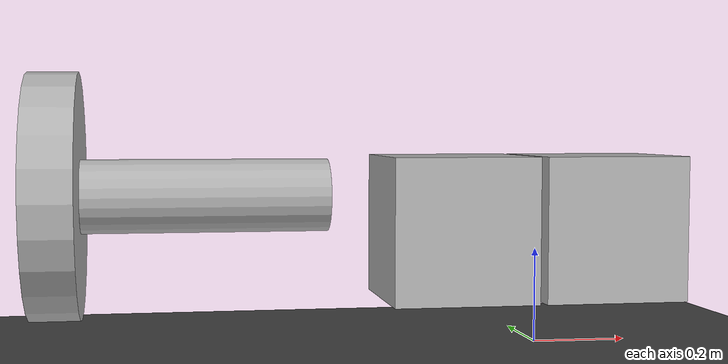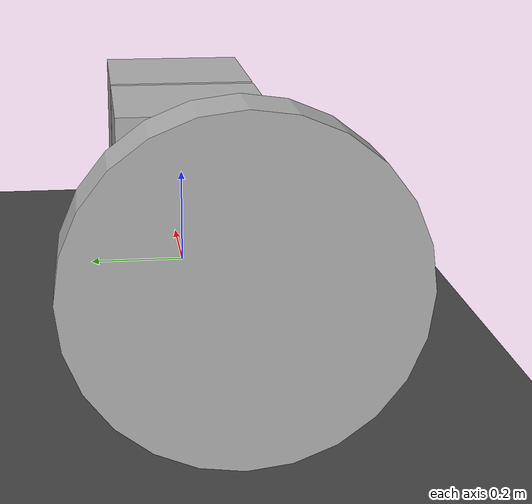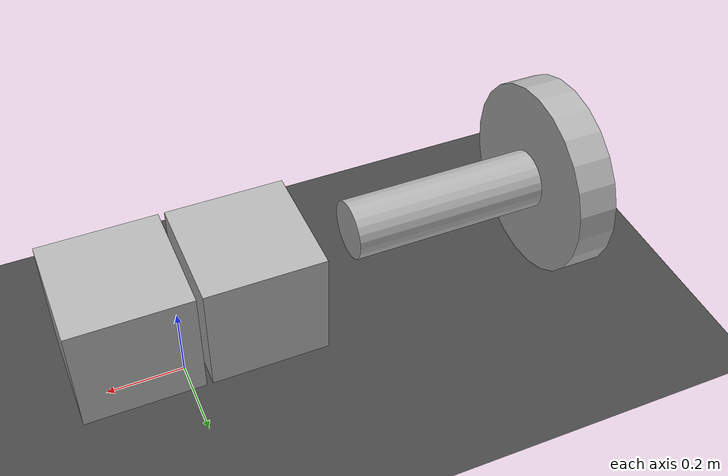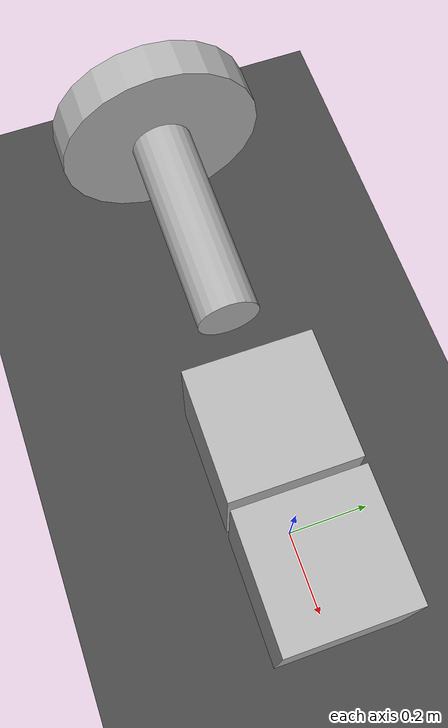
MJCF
<mujoco model="1d_impedance_match">

    <asset>
        <texture name="skybox" type="skybox" builtin="gradient" rgb1=".4 .6 .8" rgb2="0 0 0" width="800" height="800" mark="random" markrgb="1 1 1"/>
        <texture name="texplane" type="2d" builtin="checker" rgb1=".25 .25 .25" rgb2=".3 .3 .3" width="512" height="512" mark="cross" markrgb=".8 .8 .8"/>
        <material name="matplane" reflectance="0.3" texture="texplane" texrepeat="1 1" texuniform="true"/>
    </asset>

    <visual>
        <headlight ambient=".4 .4 .4" diffuse=".8 .8 .8" specular="0.1 0.1 0.1"/>
        <map znear=".01"/>
        <quality shadowsize="2048"/>
    </visual>

    <option
        timestep="0.001" integrator="RK4">
    </option>

    <compiler angle="radian"/>

    <actuator>
        <!-- CAN SELECT POSITION, VELOCITY OR MOTOR ACTUATOR; ADJUST CONTROL RANGE AS DESIRED -->
        <motor ctrllimited="true" ctrlrange="0 3" joint="joint:1" name="actuator:linear_actuator_peg"/>
        <motor ctrllimited="true" ctrlrange="-5 5" joint="joint:2" name="actuator:linear_actuator_nozzle"/>
    </actuator>

    <sensor>
        <force name='force_sensor' site='force_sensor'/>
    </sensor>

    <worldbody>
        <geom name="floor" pos="0 0 0" condim = "1" size="0 0 1" type="plane" material="matplane"/>

        <body name="peg_base" pos="-1. 0 0.32" quat="0.7071068 0 0.7071068 0">
            <joint type="slide" pos="0 0 0" axis="0 0 1" name="joint:1" damping="1" stiffness="0" limited="false" range="0 0.1"/>
            <inertial pos="0 0 0" mass="1.0" diaginertia="0.001 0.001 0.001"/>
            <geom size="0.25 0.05" type="cylinder" condim = "1" contype="1" conaffinity="1" group="1" rgba="0.7 0.7 0.7 1" name="peg_base"/>

            <body name="peg_stem" pos="0 0 0.3">
                <geom size="0.075 0.25" type="cylinder" condim = "1" contype="1" conaffinity="1" group="1" rgba="0.7 0.7 0.7 1" name="peg_stem"/>
            </body>
        </body>

        <body name="nozzle" pos="0.13 0 0.25" quat="1 0 0 0">
            <!-- SELECT EITHER SLIDE OR FREE JOINT TYPE -->
            <joint type="slide" pos="0 0 0" axis="1 0 0" name="joint:2" damping="1" stiffness="6" />
            <inertial pos="0 0 0" mass="1.0" diaginertia="0.001 0.001 0.001"/>
            <geom size="0.15 0.15 0.15" type="box" condim = "1" contype="1" conaffinity="1" group="1" rgba="0.7 0.7 0.7 1" name="box"/>
            <body name="nozzle2" pos="-0.315 0 0.0" quat="1 0 0 0">
                <inertial pos="0 0 0" mass="1.0" diaginertia="0.001 0.001 0.001"/>
                <site name='force_sensor' pos="0 0 0" size='0.005 0.005 0.005' rgba='0 0 1 1' type='sphere' group='1'/>
                <geom size="0.15 0.15 0.15" type="box" condim = "1" contype="1" conaffinity="1" group="1" rgba="0.7 0.7 0.7 1" name="box2"/>
            </body>
        </body>

    </worldbody>
</mujoco>
